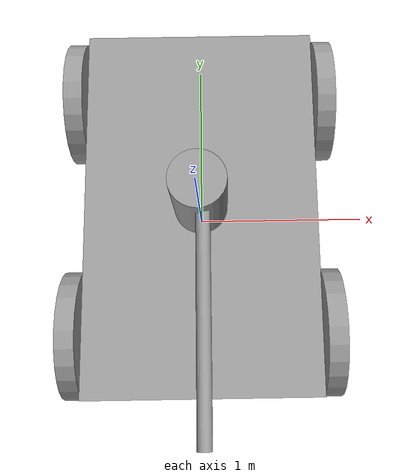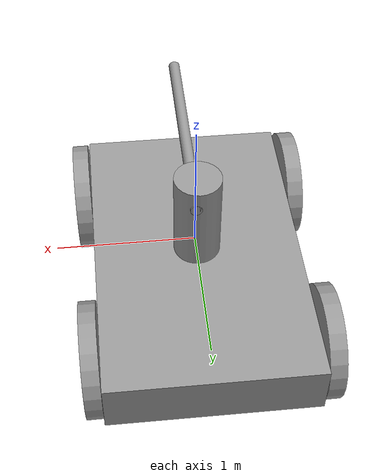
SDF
<?xml version='1.0'?>
<sdf version='1.6'>
  <model name='model01'>
    <link name='link_0'>
      <pose frame=''>-0.003831 0.090134 -0.18093 0 -0 0</pose>
      <inertial>
        <mass>1.35777</mass>
        <inertia>
          <ixx>0.645524</ixx>
          <ixy>0</ixy>
          <ixz>0</ixz>
          <iyy>0.26451</iyy>
          <iyz>0</iyz>
          <izz>0.87566</izz>
        </inertia>
        <pose frame=''>0 0 0 0 -0 0</pose>
      </inertial>
      <visual name='visual'>
        <pose frame=''>0 0 0 0 -0 0</pose>
        <geometry>
          <box>
            <size>1.47846 2.35654 0.389745</size>
          </box>
        </geometry>
        <material>
          <lighting>1</lighting>
          <script>
            <uri>file://media/materials/scripts/gazebo.material</uri>
            <name>Gazebo/Grey</name>
          </script>
          <shader type='pixel'/>
          <ambient>0.3 0.3 0.3 1</ambient>
          <diffuse>0.7 0.7 0.7 1</diffuse>
          <specular>0.01 0.01 0.01 1</specular>
          <emissive>0 0 0 1</emissive>
        </material>
        <transparency>0</transparency>
        <cast_shadows>1</cast_shadows>
      </visual>
      <collision name='collision'>
        <laser_retro>0</laser_retro>
        <max_contacts>10</max_contacts>
        <pose frame=''>0 0 0 0 -0 0</pose>
        <geometry>
          <box>
            <size>1.47846 2.35654 0.389745</size>
          </box>
        </geometry>
        <surface>
          <friction>
            <ode>
              <mu>1</mu>
              <mu2>1</mu2>
              <fdir1>0 0 0</fdir1>
              <slip1>0</slip1>
              <slip2>0</slip2>
            </ode>
            <torsional>
              <coefficient>1</coefficient>
              <patch_radius>0</patch_radius>
              <surface_radius>0</surface_radius>
              <use_patch_radius>1</use_patch_radius>
              <ode>
                <slip>0</slip>
              </ode>
            </torsional>
          </friction>
          <bounce>
            <restitution_coefficient>0</restitution_coefficient>
            <threshold>1e+06</threshold>
          </bounce>
          <contact>
            <collide_without_contact>0</collide_without_contact>
            <collide_without_contact_bitmask>1</collide_without_contact_bitmask>
            <collide_bitmask>1</collide_bitmask>
            <ode>
              <soft_cfm>0</soft_cfm>
              <soft_erp>0.2</soft_erp>
              <kp>1e+13</kp>
              <kd>1</kd>
              <max_vel>0.01</max_vel>
              <min_depth>0</min_depth>
            </ode>
            <bullet>
              <split_impulse>1</split_impulse>
              <split_impulse_penetration_threshold>-0.01</split_impulse_penetration_threshold>
              <soft_cfm>0</soft_cfm>
              <soft_erp>0.2</soft_erp>
              <kp>1e+13</kp>
              <kd>1</kd>
            </bullet>
          </contact>
        </surface>
      </collision>
    </link>
    <link name='link_1_clone_clone'>
      <pose frame=''>0.797835 0.868092 -0.18093 1.576 -0 1.576</pose>
      <inertial>
        <mass>0.116536</mass>
        <inertia>
          <ixx>0.00479334</ixx>
          <ixy>0</ixy>
          <ixz>0</ixz>
          <iyy>0.00479334</iyy>
          <iyz>0</iyz>
          <izz>0.00932286</izz>
        </inertia>
        <pose frame=''>0 0 0 0 -0 0</pose>
      </inertial>
      <self_collide>0</self_collide>
      <kinematic>0</kinematic>
      <visual name='visual'>
        <pose frame=''>0 0 0 0 -0 0</pose>
        <geometry>
          <cylinder>
            <radius>0.4</radius>
            <length>0.116547</length>
          </cylinder>
        </geometry>
        <material>
          <lighting>1</lighting>
          <script>
            <uri>file://media/materials/scripts/gazebo.material</uri>
            <name>Gazebo/Grey</name>
          </script>
          <shader type='pixel'>
            <normal_map>__default__</normal_map>
          </shader>
          <ambient>0.3 0.3 0.3 1</ambient>
          <diffuse>0.7 0.7 0.7 1</diffuse>
          <specular>0.01 0.01 0.01 1</specular>
          <emissive>0 0 0 1</emissive>
        </material>
        <transparency>0</transparency>
        <cast_shadows>1</cast_shadows>
      </visual>
      <collision name='collision'>
        <laser_retro>0</laser_retro>
        <max_contacts>10</max_contacts>
        <pose frame=''>0 0 0 0 -0 0</pose>
        <geometry>
          <cylinder>
            <radius>0.4</radius>
            <length>0.116547</length>
          </cylinder>
        </geometry>
        <surface>
          <friction>
            <ode>
              <mu>1</mu>
              <mu2>1</mu2>
              <fdir1>0 0 0</fdir1>
              <slip1>0</slip1>
              <slip2>0</slip2>
            </ode>
            <torsional>
              <coefficient>1</coefficient>
              <patch_radius>0</patch_radius>
              <surface_radius>0</surface_radius>
              <use_patch_radius>1</use_patch_radius>
              <ode>
                <slip>0</slip>
              </ode>
            </torsional>
          </friction>
          <bounce>
            <restitution_coefficient>0</restitution_coefficient>
            <threshold>1e+06</threshold>
          </bounce>
          <contact>
            <collide_without_contact>0</collide_without_contact>
            <collide_without_contact_bitmask>1</collide_without_contact_bitmask>
            <collide_bitmask>1</collide_bitmask>
            <ode>
              <soft_cfm>0</soft_cfm>
              <soft_erp>0.2</soft_erp>
              <kp>1e+13</kp>
              <kd>1</kd>
              <max_vel>0.01</max_vel>
              <min_depth>0</min_depth>
            </ode>
            <bullet>
              <split_impulse>1</split_impulse>
              <split_impulse_penetration_threshold>-0.01</split_impulse_penetration_threshold>
              <soft_cfm>0</soft_cfm>
              <soft_erp>0.2</soft_erp>
              <kp>1e+13</kp>
              <kd>1</kd>
            </bullet>
          </contact>
        </surface>
      </collision>
    </link>
    <link name='link_1_clone_clone_clone'>
      <pose frame=''>0.797835 -0.687824 -0.18093 1.576 -0 1.576</pose>
      <inertial>
        <mass>0.116536</mass>
        <inertia>
          <ixx>0.00479334</ixx>
          <ixy>0</ixy>
          <ixz>0</ixz>
          <iyy>0.00479334</iyy>
          <iyz>0</iyz>
          <izz>0.00932286</izz>
        </inertia>
        <pose frame=''>0 0 0 0 -0 0</pose>
      </inertial>
      <self_collide>0</self_collide>
      <kinematic>0</kinematic>
      <visual name='visual'>
        <pose frame=''>0 0 0 0 -0 0</pose>
        <geometry>
          <cylinder>
            <radius>0.4</radius>
            <length>0.116547</length>
          </cylinder>
        </geometry>
        <material>
          <lighting>1</lighting>
          <script>
            <uri>file://media/materials/scripts/gazebo.material</uri>
            <name>Gazebo/Grey</name>
          </script>
          <shader type='pixel'>
            <normal_map>__default__</normal_map>
          </shader>
          <ambient>0.3 0.3 0.3 1</ambient>
          <diffuse>0.7 0.7 0.7 1</diffuse>
          <specular>0.01 0.01 0.01 1</specular>
          <emissive>0 0 0 1</emissive>
        </material>
        <transparency>0</transparency>
        <cast_shadows>1</cast_shadows>
      </visual>
      <collision name='collision'>
        <laser_retro>0</laser_retro>
        <max_contacts>10</max_contacts>
        <pose frame=''>0 0 0 0 -0 0</pose>
        <geometry>
          <cylinder>
            <radius>0.4</radius>
            <length>0.116547</length>
          </cylinder>
        </geometry>
        <surface>
          <friction>
            <ode>
              <mu>1</mu>
              <mu2>1</mu2>
              <fdir1>0 0 0</fdir1>
              <slip1>0</slip1>
              <slip2>0</slip2>
            </ode>
            <torsional>
              <coefficient>1</coefficient>
              <patch_radius>0</patch_radius>
              <surface_radius>0</surface_radius>
              <use_patch_radius>1</use_patch_radius>
              <ode>
                <slip>0</slip>
              </ode>
            </torsional>
          </friction>
          <bounce>
            <restitution_coefficient>0</restitution_coefficient>
            <threshold>1e+06</threshold>
          </bounce>
          <contact>
            <collide_without_contact>0</collide_without_contact>
            <collide_without_contact_bitmask>1</collide_without_contact_bitmask>
            <collide_bitmask>1</collide_bitmask>
            <ode>
              <soft_cfm>0</soft_cfm>
              <soft_erp>0.2</soft_erp>
              <kp>1e+13</kp>
              <kd>1</kd>
              <max_vel>0.01</max_vel>
              <min_depth>0</min_depth>
            </ode>
            <bullet>
              <split_impulse>1</split_impulse>
              <split_impulse_penetration_threshold>-0.01</split_impulse_penetration_threshold>
              <soft_cfm>0</soft_cfm>
              <soft_erp>0.2</soft_erp>
              <kp>1e+13</kp>
              <kd>1</kd>
            </bullet>
          </contact>
        </surface>
      </collision>
    </link>
    <link name='link_1_clone_clone_clone_0'>
      <pose frame=''>-0.805497 0.868092 -0.18093 1.576 -0 1.576</pose>
      <inertial>
        <mass>0.116536</mass>
        <inertia>
          <ixx>0.00479334</ixx>
          <ixy>0</ixy>
          <ixz>0</ixz>
          <iyy>0.00479334</iyy>
          <iyz>0</iyz>
          <izz>0.00932286</izz>
        </inertia>
        <pose frame=''>0 0 0 0 -0 0</pose>
      </inertial>
      <self_collide>0</self_collide>
      <kinematic>0</kinematic>
      <visual name='visual'>
        <pose frame=''>0 0 0 0 -0 0</pose>
        <geometry>
          <cylinder>
            <radius>0.4</radius>
            <length>0.116547</length>
          </cylinder>
        </geometry>
        <material>
          <lighting>1</lighting>
          <script>
            <uri>file://media/materials/scripts/gazebo.material</uri>
            <name>Gazebo/Grey</name>
          </script>
          <shader type='pixel'>
            <normal_map>__default__</normal_map>
          </shader>
          <ambient>0.3 0.3 0.3 1</ambient>
          <diffuse>0.7 0.7 0.7 1</diffuse>
          <specular>0.01 0.01 0.01 1</specular>
          <emissive>0 0 0 1</emissive>
        </material>
        <transparency>0</transparency>
        <cast_shadows>1</cast_shadows>
      </visual>
      <collision name='collision'>
        <laser_retro>0</laser_retro>
        <max_contacts>10</max_contacts>
        <pose frame=''>0 0 0 0 -0 0</pose>
        <geometry>
          <cylinder>
            <radius>0.4</radius>
            <length>0.116547</length>
          </cylinder>
        </geometry>
        <surface>
          <friction>
            <ode>
              <mu>1</mu>
              <mu2>1</mu2>
              <fdir1>0 0 0</fdir1>
              <slip1>0</slip1>
              <slip2>0</slip2>
            </ode>
            <torsional>
              <coefficient>1</coefficient>
              <patch_radius>0</patch_radius>
              <surface_radius>0</surface_radius>
              <use_patch_radius>1</use_patch_radius>
              <ode>
                <slip>0</slip>
              </ode>
            </torsional>
          </friction>
          <bounce>
            <restitution_coefficient>0</restitution_coefficient>
            <threshold>1e+06</threshold>
          </bounce>
          <contact>
            <collide_without_contact>0</collide_without_contact>
            <collide_without_contact_bitmask>1</collide_without_contact_bitmask>
            <collide_bitmask>1</collide_bitmask>
            <ode>
              <soft_cfm>0</soft_cfm>
              <soft_erp>0.2</soft_erp>
              <kp>1e+13</kp>
              <kd>1</kd>
              <max_vel>0.01</max_vel>
              <min_depth>0</min_depth>
            </ode>
            <bullet>
              <split_impulse>1</split_impulse>
              <split_impulse_penetration_threshold>-0.01</split_impulse_penetration_threshold>
              <soft_cfm>0</soft_cfm>
              <soft_erp>0.2</soft_erp>
              <kp>1e+13</kp>
              <kd>1</kd>
            </bullet>
          </contact>
        </surface>
      </collision>
    </link>
    <link name='link_1_clone_clone_clone_clone'>
      <pose frame=''>-0.805496 -0.687824 -0.18093 1.576 -0 1.576</pose>
      <inertial>
        <mass>0.116536</mass>
        <inertia>
          <ixx>0.00479334</ixx>
          <ixy>0</ixy>
          <ixz>0</ixz>
          <iyy>0.00479334</iyy>
          <iyz>0</iyz>
          <izz>0.00932286</izz>
        </inertia>
        <pose frame=''>0 0 0 0 -0 0</pose>
      </inertial>
      <self_collide>0</self_collide>
      <kinematic>0</kinematic>
      <visual name='visual'>
        <pose frame=''>0 0 0 0 -0 0</pose>
        <geometry>
          <cylinder>
            <radius>0.4</radius>
            <length>0.116547</length>
          </cylinder>
        </geometry>
        <material>
          <lighting>1</lighting>
          <script>
            <uri>file://media/materials/scripts/gazebo.material</uri>
            <name>Gazebo/Grey</name>
          </script>
          <shader type='pixel'>
            <normal_map>__default__</normal_map>
          </shader>
          <ambient>0.3 0.3 0.3 1</ambient>
          <diffuse>0.7 0.7 0.7 1</diffuse>
          <specular>0.01 0.01 0.01 1</specular>
          <emissive>0 0 0 1</emissive>
        </material>
        <transparency>0</transparency>
        <cast_shadows>1</cast_shadows>
      </visual>
      <collision name='collision'>
        <laser_retro>0</laser_retro>
        <max_contacts>10</max_contacts>
        <pose frame=''>0 0 0 0 -0 0</pose>
        <geometry>
          <cylinder>
            <radius>0.4</radius>
            <length>0.116547</length>
          </cylinder>
        </geometry>
        <surface>
          <friction>
            <ode>
              <mu>1</mu>
              <mu2>1</mu2>
              <fdir1>0 0 0</fdir1>
              <slip1>0</slip1>
              <slip2>0</slip2>
            </ode>
            <torsional>
              <coefficient>1</coefficient>
              <patch_radius>0</patch_radius>
              <surface_radius>0</surface_radius>
              <use_patch_radius>1</use_patch_radius>
              <ode>
                <slip>0</slip>
              </ode>
            </torsional>
          </friction>
          <bounce>
            <restitution_coefficient>0</restitution_coefficient>
            <threshold>1e+06</threshold>
          </bounce>
          <contact>
            <collide_without_contact>0</collide_without_contact>
            <collide_without_contact_bitmask>1</collide_without_contact_bitmask>
            <collide_bitmask>1</collide_bitmask>
            <ode>
              <soft_cfm>0</soft_cfm>
              <soft_erp>0.2</soft_erp>
              <kp>1e+13</kp>
              <kd>1</kd>
              <max_vel>0.01</max_vel>
              <min_depth>0</min_depth>
            </ode>
            <bullet>
              <split_impulse>1</split_impulse>
              <split_impulse_penetration_threshold>-0.01</split_impulse_penetration_threshold>
              <soft_cfm>0</soft_cfm>
              <soft_erp>0.2</soft_erp>
              <kp>1e+13</kp>
              <kd>1</kd>
            </bullet>
          </contact>
        </surface>
      </collision>
    </link>
    <link name='link_2'>
      <pose frame=''>-0.003831 0.090134 0.354246 0 -0 0</pose>
      <inertial>
        <mass>0.075761</mass>
        <inertia>
          <ixx>0.0034516</ixx>
          <ixy>0</ixy>
          <ixz>0</ixz>
          <iyy>0.0034516</iyy>
          <iyz>0</iyz>
          <izz>0.0010541</izz>
        </inertia>
        <pose frame=''>0 0 0 0 -0 0</pose>
      </inertial>
      <visual name='visual'>
        <pose frame=''>0 0 0 0 -0 0</pose>
        <geometry>
          <cylinder>
            <radius>0.166815</radius>
            <length>0.680608</length>
          </cylinder>
        </geometry>
        <material>
          <lighting>1</lighting>
          <script>
            <uri>file://media/materials/scripts/gazebo.material</uri>
            <name>Gazebo/Grey</name>
          </script>
          <shader type='pixel'/>
          <ambient>0.3 0.3 0.3 1</ambient>
          <diffuse>0.7 0.7 0.7 1</diffuse>
          <specular>0.01 0.01 0.01 1</specular>
          <emissive>0 0 0 1</emissive>
        </material>
        <transparency>0</transparency>
        <cast_shadows>1</cast_shadows>
      </visual>
      <collision name='collision'>
        <laser_retro>0</laser_retro>
        <max_contacts>10</max_contacts>
        <pose frame=''>0 0 0 0 -0 0</pose>
        <geometry>
          <cylinder>
            <radius>0.166815</radius>
            <length>0.680608</length>
          </cylinder>
        </geometry>
        <surface>
          <friction>
            <ode>
              <mu>1</mu>
              <mu2>1</mu2>
              <fdir1>0 0 0</fdir1>
              <slip1>0</slip1>
              <slip2>0</slip2>
            </ode>
            <torsional>
              <coefficient>1</coefficient>
              <patch_radius>0</patch_radius>
              <surface_radius>0</surface_radius>
              <use_patch_radius>1</use_patch_radius>
              <ode>
                <slip>0</slip>
              </ode>
            </torsional>
          </friction>
          <bounce>
            <restitution_coefficient>0</restitution_coefficient>
            <threshold>1e+06</threshold>
          </bounce>
          <contact>
            <collide_without_contact>0</collide_without_contact>
            <collide_without_contact_bitmask>1</collide_without_contact_bitmask>
            <collide_bitmask>1</collide_bitmask>
            <ode>
              <soft_cfm>0</soft_cfm>
              <soft_erp>0.2</soft_erp>
              <kp>1e+13</kp>
              <kd>1</kd>
              <max_vel>0.01</max_vel>
              <min_depth>0</min_depth>
            </ode>
            <bullet>
              <split_impulse>1</split_impulse>
              <split_impulse_penetration_threshold>-0.01</split_impulse_penetration_threshold>
              <soft_cfm>0</soft_cfm>
              <soft_erp>0.2</soft_erp>
              <kp>1e+13</kp>
              <kd>1</kd>
            </bullet>
          </contact>
        </surface>
      </collision>
    </link>
    <link name='link_7'>
      <pose frame=''>0.022984 -0.540815 0.550402 1.576 -0 0</pose>
      <inertial>
        <mass>0.0110386</mass>
        <inertia>
          <ixx>0.00234531</ixx>
          <ixy>0</ixy>
          <ixz>0</ixz>
          <iyy>0.00234531</iyy>
          <iyz>0</iyz>
          <izz>9.52326e-06</izz>
        </inertia>
        <pose frame=''>0 0 0 0 -0 0</pose>
      </inertial>
      <gravity>1</gravity>
      <self_collide>0</self_collide>
      <kinematic>0</kinematic>
      <visual name='visual'>
        <pose frame=''>0 0 0 0 -0 0</pose>
        <geometry>
          <cylinder>
            <radius>0.0415385</radius>
            <length>1.59512</length>
          </cylinder>
        </geometry>
        <material>
          <lighting>1</lighting>
          <script>
            <uri>file://media/materials/scripts/gazebo.material</uri>
            <name>Gazebo/Grey</name>
          </script>
          <shader type='pixel'>
            <normal_map>__default__</normal_map>
          </shader>
          <ambient>0.3 0.3 0.3 1</ambient>
          <diffuse>0.7 0.7 0.7 1</diffuse>
          <specular>0.01 0.01 0.01 1</specular>
          <emissive>0 0 0 1</emissive>
        </material>
        <transparency>0</transparency>
        <cast_shadows>1</cast_shadows>
      </visual>
      <collision name='collision'>
        <laser_retro>0</laser_retro>
        <max_contacts>10</max_contacts>
        <pose frame=''>0 0 0 0 -0 0</pose>
        <geometry>
          <cylinder>
            <radius>0.041538</radius>
            <length>1.59512</length>
          </cylinder>
        </geometry>
        <surface>
          <friction>
            <ode>
              <mu>1</mu>
              <mu2>1</mu2>
              <fdir1>0 0 0</fdir1>
              <slip1>0</slip1>
              <slip2>0</slip2>
            </ode>
            <torsional>
              <coefficient>1</coefficient>
              <patch_radius>0</patch_radius>
              <surface_radius>0</surface_radius>
              <use_patch_radius>1</use_patch_radius>
              <ode>
                <slip>0</slip>
              </ode>
            </torsional>
          </friction>
          <bounce>
            <restitution_coefficient>0</restitution_coefficient>
            <threshold>1e+06</threshold>
          </bounce>
          <contact>
            <collide_without_contact>0</collide_without_contact>
            <collide_without_contact_bitmask>1</collide_without_contact_bitmask>
            <collide_bitmask>1</collide_bitmask>
            <ode>
              <soft_cfm>0</soft_cfm>
              <soft_erp>0.2</soft_erp>
              <kp>1e+13</kp>
              <kd>1</kd>
              <max_vel>0.01</max_vel>
              <min_depth>0</min_depth>
            </ode>
            <bullet>
              <split_impulse>1</split_impulse>
              <split_impulse_penetration_threshold>-0.01</split_impulse_penetration_threshold>
              <soft_cfm>0</soft_cfm>
              <soft_erp>0.2</soft_erp>
              <kp>1e+13</kp>
              <kd>1</kd>
            </bullet>
          </contact>
        </surface>
      </collision>
    </link>
    <joint name='link_0_JOINT_2' type='revolute'>
      <parent>link_0</parent>
      <child>link_1_clone_clone_clone_0</child>
      <pose frame=''>0 0 0 0 -0 0</pose>
      <axis>
        <xyz>0 0 1</xyz>
        <use_parent_model_frame>0</use_parent_model_frame>
        <limit>
          <lower>-1.79769e+308</lower>
          <upper>1.79769e+308</upper>
          <effort>-1</effort>
          <velocity>-1</velocity>
        </limit>
        <dynamics>
          <spring_reference>0</spring_reference>
          <spring_stiffness>0</spring_stiffness>
          <damping>0</damping>
        </dynamics>
      </axis>
      <physics>
        <ode>
          <limit>
            <cfm>0</cfm>
            <erp>0.2</erp>
          </limit>
          <suspension>
            <cfm>0</cfm>
            <erp>0.2</erp>
          </suspension>
        </ode>
      </physics>
    </joint>
    <joint name='link_0_JOINT_3' type='revolute'>
      <parent>link_0</parent>
      <child>link_1_clone_clone_clone_clone</child>
      <pose frame=''>0 0 0 0 -0 0</pose>
      <axis>
        <xyz>0 0 1</xyz>
        <use_parent_model_frame>0</use_parent_model_frame>
        <limit>
          <lower>-1.79769e+308</lower>
          <upper>1.79769e+308</upper>
          <effort>-1</effort>
          <velocity>-1</velocity>
        </limit>
        <dynamics>
          <spring_reference>0</spring_reference>
          <spring_stiffness>0</spring_stiffness>
          <damping>0</damping>
        </dynamics>
      </axis>
      <physics>
        <ode>
          <limit>
            <cfm>0</cfm>
            <erp>0.2</erp>
          </limit>
          <suspension>
            <cfm>0</cfm>
            <erp>0.2</erp>
          </suspension>
        </ode>
      </physics>
    </joint>
    <joint name='link_0_JOINT_4' type='revolute'>
      <parent>link_0</parent>
      <child>link_1_clone_clone_clone</child>
      <pose frame=''>0 0 0 0 -0 0</pose>
      <axis>
        <xyz>0 0 1</xyz>
        <use_parent_model_frame>0</use_parent_model_frame>
        <limit>
          <lower>-1.79769e+308</lower>
          <upper>1.79769e+308</upper>
          <effort>-1</effort>
          <velocity>-1</velocity>
        </limit>
        <dynamics>
          <spring_reference>0</spring_reference>
          <spring_stiffness>0</spring_stiffness>
          <damping>0</damping>
        </dynamics>
      </axis>
      <physics>
        <ode>
          <limit>
            <cfm>0</cfm>
            <erp>0.2</erp>
          </limit>
          <suspension>
            <cfm>0</cfm>
            <erp>0.2</erp>
          </suspension>
        </ode>
      </physics>
    </joint>
    <joint name='link_0_JOINT_5' type='revolute'>
      <parent>link_0</parent>
      <child>link_1_clone_clone</child>
      <pose frame=''>0 0 0 0 -0 0</pose>
      <axis>
        <xyz>0 0 1</xyz>
        <use_parent_model_frame>0</use_parent_model_frame>
        <limit>
          <lower>-1.79769e+308</lower>
          <upper>1.79769e+308</upper>
          <effort>-1</effort>
          <velocity>-1</velocity>
        </limit>
        <dynamics>
          <spring_reference>0</spring_reference>
          <spring_stiffness>0</spring_stiffness>
          <damping>0</damping>
        </dynamics>
      </axis>
      <physics>
        <ode>
          <limit>
            <cfm>0</cfm>
            <erp>0.2</erp>
          </limit>
          <suspension>
            <cfm>0</cfm>
            <erp>0.2</erp>
          </suspension>
        </ode>
      </physics>
    </joint>
    <joint name='link_0_JOINT_6' type='revolute'>
      <parent>link_0</parent>
      <child>link_2</child>
      <pose frame=''>0 0 0 0 -0 0</pose>
      <axis>
        <xyz>0 0 1</xyz>
        <use_parent_model_frame>0</use_parent_model_frame>
        <limit>
          <lower>-1.79769e+308</lower>
          <upper>1.79769e+308</upper>
          <effort>-1</effort>
          <velocity>-1</velocity>
        </limit>
        <dynamics>
          <spring_reference>0</spring_reference>
          <spring_stiffness>0</spring_stiffness>
          <damping>0</damping>
        </dynamics>
      </axis>
      <physics>
        <ode>
          <limit>
            <cfm>0</cfm>
            <erp>0.2</erp>
          </limit>
          <suspension>
            <cfm>0</cfm>
            <erp>0.2</erp>
          </suspension>
        </ode>
      </physics>
    </joint>
    <joint name='link_2_JOINT_11' type='fixed'>
      <parent>link_2</parent>
      <child>link_7</child>
      <pose frame=''>0 0 0 0 -0 0</pose>
      <physics>
        <ode>
          <limit>
            <cfm>0</cfm>
            <erp>0.2</erp>
          </limit>
          <suspension>
            <cfm>0</cfm>
            <erp>0.2</erp>
          </suspension>
        </ode>
      </physics>
    </joint>
    <static>0</static>
    <allow_auto_disable>1</allow_auto_disable>
  </model>
</sdf>
